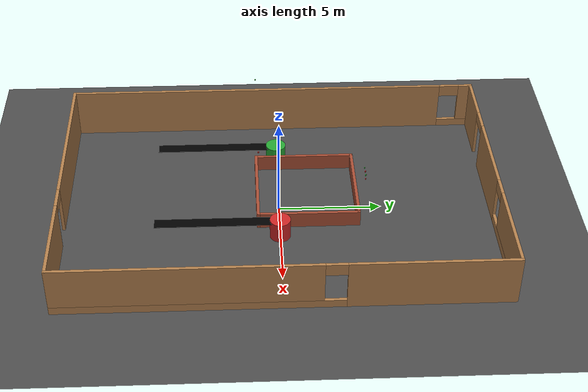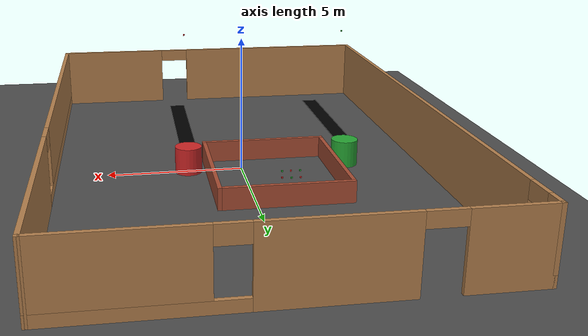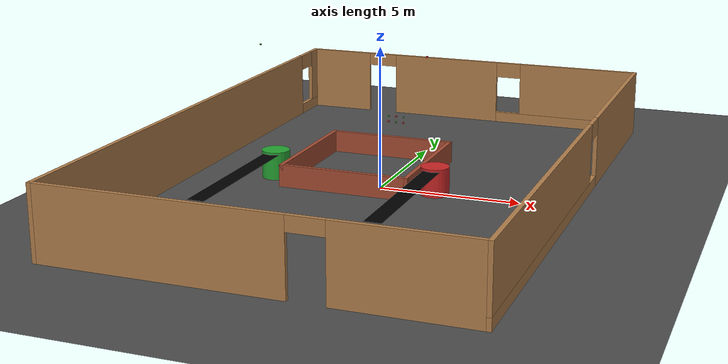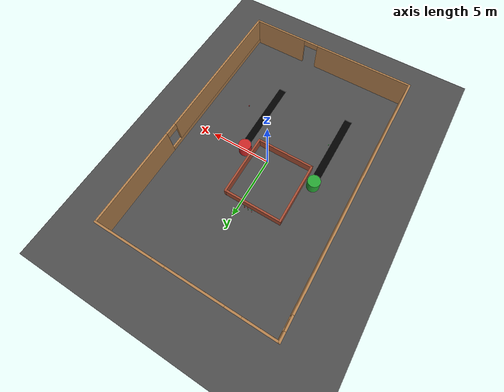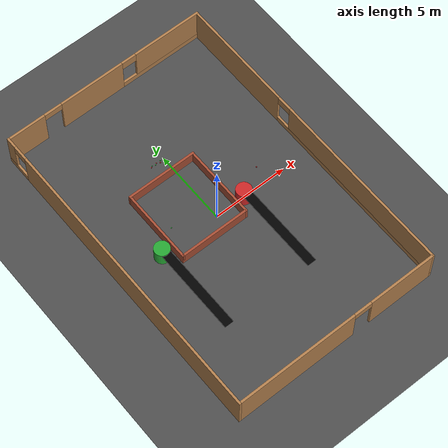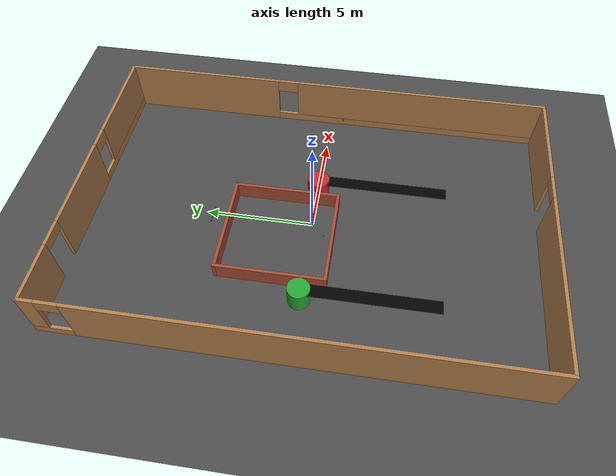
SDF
<sdf version="1.7">
 <world name="default">
  <light name="sun" type="directional">
   <pose>0 0 10 0 -0 0</pose>
   <diffuse>0.8 0.8 0.8 1</diffuse>
   <specular>0.2 0.2 0.2 1</specular>
   <attenuation>
    <range>1000</range>
    <constant>0.9</constant>
    <linear>0.01</linear>
    <quadratic>0.001</quadratic>
   </attenuation>
   <direction>-0.5 0.1 -0.9</direction>
   <spot><inner_angle>0</inner_angle><outer_angle>0</outer_angle><falloff>0</falloff></spot>
  </light>
  <gravity>0 0 -9.8</gravity>
  <magnetic_field>6e-06 2.3e-05 -4.2e-05</magnetic_field>
  <atmosphere type="adiabatic"/>
  <physics type="ode">
   <max_step_size>0.001</max_step_size>
   <real_time_factor>1</real_time_factor>
   <real_time_update_rate>1000</real_time_update_rate>
  </physics>
  <scene><ambient>0.4 0.4 0.4 1</ambient><background>0.7 0.7 0.7 1</background><shadows>1</shadows></scene>
  <spherical_coordinates>
   <surface_model>EARTH_WGS84</surface_model>
   <latitude_deg>0</latitude_deg>
   <longitude_deg>0</longitude_deg>
   <elevation>0</elevation>
   <heading_deg>0</heading_deg>
  </spherical_coordinates>
  <model name="Vichesta_Building">
   <link name="Wall_4">
    <pose>-6.92524 -0.000222 0 0 -0 1.5708</pose>
    <visual name="Wall_4_Visual_0">
     <pose>-0.860708 0 1.25 0 -0 0</pose>
     <geometry><box><size>19.2786 0.15 2.5</size></box></geometry>
     <material>
      <script><uri>file://media/materials/scripts/gazebo.material</uri><name>Gazebo/Wood</name></script>
      <ambient>1 1 1 1</ambient>
     </material>
     <meta><layer>0</layer></meta>
    </visual>
    <collision name="Wall_4_Collision_0">
     <geometry><box><size>19.2786 0.15 2.5</size></box></geometry>
     <pose>-0.860708 0 1.25 0 -0 0</pose>
    </collision>
    <visual name="Wall_4_Visual_1">
     <pose>9.63929 0 0.2 0 -0 0</pose>
     <geometry><box><size>1.72142 0.15 0.4</size></box></geometry>
     <material>
      <script><uri>file://media/materials/scripts/gazebo.material</uri><name>Gazebo/Wood</name></script>
      <ambient>1 1 1 1</ambient>
     </material>
     <meta><layer>0</layer></meta>
    </visual>
    <collision name="Wall_4_Collision_1">
     <geometry><box><size>1.72142 0.15 0.4</size></box></geometry>
     <pose>9.63929 0 0.2 0 -0 0</pose>
    </collision>
    <visual name="Wall_4_Visual_2">
     <pose>10.1393 0 1.45 0 -0 0</pose>
     <geometry><box><size>0.721417 0.15 2.1</size></box></geometry>
     <material>
      <script><uri>file://media/materials/scripts/gazebo.material</uri><name>Gazebo/Wood</name></script>
      <ambient>1 1 1 1</ambient>
     </material>
     <meta><layer>0</layer></meta>
    </visual>
    <collision name="Wall_4_Collision_2">
     <geometry><box><size>0.721417 0.15 2.1</size></box></geometry>
     <pose>10.1393 0 1.45 0 -0 0</pose>
    </collision>
    <visual name="Wall_4_Visual_3">
     <pose>9.27858 0 2.2 0 -0 0</pose>
     <geometry><box><size>1 0.15 0.6</size></box></geometry>
     <material>
      <script><uri>file://media/materials/scripts/gazebo.material</uri><name>Gazebo/Wood</name></script>
      <ambient>1 1 1 1</ambient>
     </material>
     <meta><layer>0</layer></meta>
    </visual>
    <collision name="Wall_4_Collision_3">
     <geometry><box><size>1 0.15 0.6</size></box></geometry>
     <pose>9.27858 0 2.2 0 -0 0</pose>
    </collision>
   </link>
   <link name="Wall_5">
    <pose>-0 10.425 0 0 -0 3.2e-05</pose>
    <visual name="Wall_5_Visual_0">
     <pose>-5.68626 0 1.25 0 -0 0</pose>
     <geometry><box><size>2.62749 0.15 2.5</size></box></geometry>
     <material>
      <script><uri>file://media/materials/scripts/gazebo.material</uri><name>Gazebo/Wood</name></script>
      <ambient>1 1 1 1</ambient>
     </material>
     <meta><layer>0</layer></meta>
    </visual>
    <collision name="Wall_5_Collision_0">
     <geometry><box><size>2.62749 0.15 2.5</size></box></geometry>
     <pose>-5.68626 0 1.25 0 -0 0</pose>
    </collision>
    <visual name="Wall_5_Visual_1">
     <pose>-0.953751 0 1.25 0 -0 0</pose>
     <geometry><box><size>4.43752 0.15 2.5</size></box></geometry>
     <material>
      <script><uri>file://media/materials/scripts/gazebo.material</uri><name>Gazebo/Wood</name></script>
      <ambient>1 1 1 1</ambient>
     </material>
     <meta><layer>0</layer></meta>
    </visual>
    <collision name="Wall_5_Collision_1">
     <geometry><box><size>4.43752 0.15 2.5</size></box></geometry>
     <pose>-0.953751 0 1.25 0 -0 0</pose>
    </collision>
    <visual name="Wall_5_Visual_2">
     <pose>4.13251 0 0.2 0 -0 0</pose>
     <geometry><box><size>5.73499 0.15 0.4</size></box></geometry>
     <material>
      <script><uri>file://media/materials/scripts/gazebo.material</uri><name>Gazebo/Wood</name></script>
      <ambient>1 1 1 1</ambient>
     </material>
     <meta><layer>0</layer></meta>
    </visual>
    <collision name="Wall_5_Collision_2">
     <geometry><box><size>5.73499 0.15 0.4</size></box></geometry>
     <pose>4.13251 0 0.2 0 -0 0</pose>
    </collision>
    <visual name="Wall_5_Visual_3">
     <pose>4.63251 0 1.45 0 -0 0</pose>
     <geometry><box><size>4.73499 0.15 2.1</size></box></geometry>
     <material>
      <script><uri>file://media/materials/scripts/gazebo.material</uri><name>Gazebo/Wood</name></script>
      <ambient>1 1 1 1</ambient>
     </material>
     <meta><layer>0</layer></meta>
    </visual>
    <collision name="Wall_5_Collision_3">
     <geometry><box><size>4.73499 0.15 2.1</size></box></geometry>
     <pose>4.63251 0 1.45 0 -0 0</pose>
    </collision>
    <visual name="Wall_5_Visual_4">
     <pose>1.76501 0 2.2 0 -0 0</pose>
     <geometry><box><size>1 0.15 0.6</size></box></geometry>
     <material>
      <script><uri>file://media/materials/scripts/gazebo.material</uri><name>Gazebo/Wood</name></script>
      <ambient>1 1 1 1</ambient>
     </material>
     <meta><layer>0</layer></meta>
    </visual>
    <collision name="Wall_5_Collision_4">
     <geometry><box><size>1 0.15 0.6</size></box></geometry>
     <pose>1.76501 0 2.2 0 -0 0</pose>
    </collision>
    <visual name="Wall_5_Visual_5">
     <pose>-3.77251 0 2.25 0 -0 0</pose>
     <geometry><box><size>1.2 0.15 0.5</size></box></geometry>
     <material>
      <script><uri>file://media/materials/scripts/gazebo.material</uri><name>Gazebo/Wood</name></script>
      <ambient>1 1 1 1</ambient>
     </material>
     <meta><layer>0</layer></meta>
    </visual>
    <collision name="Wall_5_Collision_5">
     <geometry><box><size>1.2 0.15 0.5</size></box></geometry>
     <pose>-3.77251 0 2.25 0 -0 0</pose>
    </collision>
   </link>
   <link name="Wall_6">
    <pose>6.92524 0.000222 0 0 -0 -1.5708</pose>
    <visual name="Wall_6_Visual_0">
     <pose>-6.64128 0 1.25 0 -0 0</pose>
     <geometry><box><size>7.71744 0.15 2.5</size></box></geometry>
     <material>
      <script><uri>file://media/materials/scripts/gazebo.material</uri><name>Gazebo/Wood</name></script>
      <ambient>1 1 1 1</ambient>
     </material>
     <meta><layer>0</layer></meta>
    </visual>
    <collision name="Wall_6_Collision_0">
     <geometry><box><size>7.71744 0.15 2.5</size></box></geometry>
     <pose>-6.64128 0 1.25 0 -0 0</pose>
    </collision>
    <visual name="Wall_6_Visual_1">
     <pose>3.85872 0 0.2 0 -0 0</pose>
     <geometry><box><size>13.2826 0.15 0.4</size></box></geometry>
     <material>
      <script><uri>file://media/materials/scripts/gazebo.material</uri><name>Gazebo/Wood</name></script>
      <ambient>1 1 1 1</ambient>
     </material>
     <meta><layer>0</layer></meta>
    </visual>
    <collision name="Wall_6_Collision_1">
     <geometry><box><size>13.2826 0.15 0.4</size></box></geometry>
     <pose>3.85872 0 0.2 0 -0 0</pose>
    </collision>
    <visual name="Wall_6_Visual_2">
     <pose>4.35872 0 1.45 0 -0 0</pose>
     <geometry><box><size>12.2826 0.15 2.1</size></box></geometry>
     <material>
      <script><uri>file://media/materials/scripts/gazebo.material</uri><name>Gazebo/Wood</name></script>
      <ambient>1 1 1 1</ambient>
     </material>
     <meta><layer>0</layer></meta>
    </visual>
    <collision name="Wall_6_Collision_2">
     <geometry><box><size>12.2826 0.15 2.1</size></box></geometry>
     <pose>4.35872 0 1.45 0 -0 0</pose>
    </collision>
    <visual name="Wall_6_Visual_3">
     <pose>-2.28256 0 2.2 0 -0 0</pose>
     <geometry><box><size>1 0.15 0.6</size></box></geometry>
     <material>
      <script><uri>file://media/materials/scripts/gazebo.material</uri><name>Gazebo/Wood</name></script>
      <ambient>1 1 1 1</ambient>
     </material>
     <meta><layer>0</layer></meta>
    </visual>
    <collision name="Wall_6_Collision_3">
     <geometry><box><size>1 0.15 0.6</size></box></geometry>
     <pose>-2.28256 0 2.2 0 -0 0</pose>
    </collision>
   </link>
   <link name="Wall_8">
    <pose>-0 -10.425 0 0 -0 3.2e-05</pose>
    <visual name="Wall_8_Visual_0">
     <pose>-2.90462 0 1.25 0 -0 0</pose>
     <geometry><box><size>8.19076 0.15 2.5</size></box></geometry>
     <material>
      <script><uri>file://media/materials/scripts/gazebo.material</uri><name>Gazebo/Wood</name></script>
      <ambient>1 1 1 1</ambient>
     </material>
     <meta><layer>0</layer></meta>
    </visual>
    <collision name="Wall_8_Collision_0">
     <geometry><box><size>8.19076 0.15 2.5</size></box></geometry>
     <pose>-2.90462 0 1.25 0 -0 0</pose>
    </collision>
    <visual name="Wall_8_Visual_1">
     <pose>4.69538 0 1.25 0 -0 0</pose>
     <geometry><box><size>4.60924 0.15 2.5</size></box></geometry>
     <material>
      <script><uri>file://media/materials/scripts/gazebo.material</uri><name>Gazebo/Wood</name></script>
      <ambient>1 1 1 1</ambient>
     </material>
     <meta><layer>0</layer></meta>
    </visual>
    <collision name="Wall_8_Collision_1">
     <geometry><box><size>4.60924 0.15 2.5</size></box></geometry>
     <pose>4.69538 0 1.25 0 -0 0</pose>
    </collision>
    <visual name="Wall_8_Visual_2">
     <pose>1.79076 0 2.25 0 -0 0</pose>
     <geometry><box><size>1.2 0.15 0.5</size></box></geometry>
     <material>
      <script><uri>file://media/materials/scripts/gazebo.material</uri><name>Gazebo/Wood</name></script>
      <ambient>1 1 1 1</ambient>
     </material>
     <meta><layer>0</layer></meta>
    </visual>
    <collision name="Wall_8_Collision_2">
     <geometry><box><size>1.2 0.15 0.5</size></box></geometry>
     <pose>1.79076 0 2.25 0 -0 0</pose>
    </collision>
   </link>
   <static>1</static>
  </model>
  <model name="ground_plane">
   <static>1</static>
   <link name="link">
    <collision name="collision">
     <geometry><plane><normal>0 0 1</normal><size>100 100</size></plane></geometry>
     <surface>
      <contact><collide_bitmask>65535</collide_bitmask></contact>
      <friction><ode><mu>100</mu><mu2>50</mu2></ode></friction>
     </surface>
    </collision>
    <visual name="visual">
     <cast_shadows>0</cast_shadows>
     <geometry><plane><normal>0 0 1</normal><size>100 100</size></plane></geometry>
     <material>
      <script><uri>file://media/materials/scripts/gazebo.material</uri><name>Gazebo/DarkGrey</name></script>
     </material>
    </visual>
   </link>
   <pose>-8.17844 11.8001 0 0 -0 0</pose>
  </model>
  <model name="green_box">
   <link name="link_0">
    <inertial>
     <mass>0.1</mass>
     <inertia>
      <ixx>3.5295e-06</ixx>
      <ixy>0</ixy>
      <ixz>0</ixz>
      <iyy>3.47859e-06</iyy>
      <iyz>0</iyz>
      <izz>4.27589e-06</izz>
     </inertia>
    </inertial>
    <pose>-0 2e-06 0 0 -0 0</pose>
    <visual name="visual">
     <geometry><box><size>0.05 0.05 0.05</size></box></geometry>
     <material>
      <lighting>1</lighting>
      <script><uri>file://media/materials/scripts/gazebo.material</uri><name>Gazebo/Green</name></script>
      <shader type="pixel"/>
     </material>
    </visual>
    <collision name="collision">
     <geometry><box><size>0.05 0.05 0.05</size></box></geometry>
     <surface>
      <friction>
       <ode><mu>1</mu><mu2>1</mu2><fdir1>0 0 0</fdir1><slip1>0</slip1><slip2>0</slip2></ode>
       <torsional>
        <coefficient>1</coefficient>
        <patch_radius>0</patch_radius>
        <surface_radius>0</surface_radius>
        <use_patch_radius>1</use_patch_radius>
        <ode><slip>0</slip></ode>
       </torsional>
      </friction>
      <bounce><restitution_coefficient>0</restitution_coefficient><threshold>1e+06</threshold></bounce>
      <contact>
       <collide_without_contact>0</collide_without_contact>
       <collide_without_contact_bitmask>1</collide_without_contact_bitmask>
       <collide_bitmask>1</collide_bitmask>
       <ode>
        <soft_cfm>0</soft_cfm>
        <soft_erp>0.2</soft_erp>
        <kp>1e+13</kp>
        <kd>1</kd>
        <max_vel>0.01</max_vel>
        <min_depth>0</min_depth>
       </ode>
       <bullet>
        <split_impulse>1</split_impulse>
        <split_impulse_penetration_threshold>-0.01</split_impulse_penetration_threshold>
        <soft_cfm>0</soft_cfm>
        <soft_erp>0.2</soft_erp>
        <kp>1e+13</kp>
        <kd>1</kd>
       </bullet>
      </contact>
     </surface>
    </collision>
   </link>
   <static>0</static>
   <pose>-1.00791 4.3655 1.21604 -2.4e-05 -0 -0.05523</pose>
  </model>
  <model name="red_box">
   <link name="link_0">
    <inertial>
     <mass>0.1</mass>
     <inertia>
      <ixx>3.5295e-06</ixx>
      <ixy>0</ixy>
      <ixz>0</ixz>
      <iyy>3.47859e-06</iyy>
      <iyz>0</iyz>
      <izz>4.27589e-06</izz>
     </inertia>
    </inertial>
    <pose>-0 2e-06 0 0 -0 0</pose>
    <visual name="visual">
     <geometry><box><size>0.05 0.05 0.05</size></box></geometry>
     <material>
      <lighting>1</lighting>
      <script><uri>file://media/materials/scripts/gazebo.material</uri><name>Gazebo/Red</name></script>
      <shader type="pixel"/>
     </material>
    </visual>
    <collision name="collision">
     <geometry><box><size>0.05 0.05 0.05</size></box></geometry>
     <surface>
      <friction>
       <ode><mu>1</mu><mu2>1</mu2><fdir1>0 0 0</fdir1><slip1>0</slip1><slip2>0</slip2></ode>
       <torsional>
        <coefficient>1</coefficient>
        <patch_radius>0</patch_radius>
        <surface_radius>0</surface_radius>
        <use_patch_radius>1</use_patch_radius>
        <ode><slip>0</slip></ode>
       </torsional>
      </friction>
      <bounce><restitution_coefficient>0</restitution_coefficient><threshold>1e+06</threshold></bounce>
      <contact>
       <collide_without_contact>0</collide_without_contact>
       <collide_without_contact_bitmask>1</collide_without_contact_bitmask>
       <collide_bitmask>1</collide_bitmask>
       <ode>
        <soft_cfm>0</soft_cfm>
        <soft_erp>0.2</soft_erp>
        <kp>1e+13</kp>
        <kd>1</kd>
        <max_vel>0.01</max_vel>
        <min_depth>0</min_depth>
       </ode>
       <bullet>
        <split_impulse>1</split_impulse>
        <split_impulse_penetration_threshold>-0.01</split_impulse_penetration_threshold>
        <soft_cfm>0</soft_cfm>
        <soft_erp>0.2</soft_erp>
        <kp>1e+13</kp>
        <kd>1</kd>
       </bullet>
      </contact>
     </surface>
    </collision>
   </link>
   <static>0</static>
   <pose>-1.30915 4.37173 1.21605 -2.9e-05 1.5e-05 -0.024752</pose>
  </model>
  <model name="green_box_0">
   <link name="link_0">
    <inertial>
     <mass>0.1</mass>
     <inertia>
      <ixx>3.5295e-06</ixx>
      <ixy>0</ixy>
      <ixz>0</ixz>
      <iyy>3.47859e-06</iyy>
      <iyz>0</iyz>
      <izz>4.27589e-06</izz>
     </inertia>
    </inertial>
    <pose>-0 2e-06 0 0 -0 0</pose>
    <visual name="visual">
     <geometry><box><size>0.05 0.05 0.05</size></box></geometry>
     <material>
      <lighting>1</lighting>
      <script><uri>file://media/materials/scripts/gazebo.material</uri><name>Gazebo/Green</name></script>
      <shader type="pixel"/>
     </material>
    </visual>
    <collision name="collision">
     <geometry><box><size>0.05 0.05 0.05</size></box></geometry>
     <surface>
      <friction>
       <ode><mu>1</mu><mu2>1</mu2><fdir1>0 0 0</fdir1><slip1>0</slip1><slip2>0</slip2></ode>
       <torsional>
        <coefficient>1</coefficient>
        <patch_radius>0</patch_radius>
        <surface_radius>0</surface_radius>
        <use_patch_radius>1</use_patch_radius>
        <ode><slip>0</slip></ode>
       </torsional>
      </friction>
      <bounce><restitution_coefficient>0</restitution_coefficient><threshold>1e+06</threshold></bounce>
      <contact>
       <collide_without_contact>0</collide_without_contact>
       <collide_without_contact_bitmask>1</collide_without_contact_bitmask>
       <collide_bitmask>1</collide_bitmask>
       <ode>
        <soft_cfm>0</soft_cfm>
        <soft_erp>0.2</soft_erp>
        <kp>1e+13</kp>
        <kd>1</kd>
        <max_vel>0.01</max_vel>
        <min_depth>0</min_depth>
       </ode>
       <bullet>
        <split_impulse>1</split_impulse>
        <split_impulse_penetration_threshold>-0.01</split_impulse_penetration_threshold>
        <soft_cfm>0</soft_cfm>
        <soft_erp>0.2</soft_erp>
        <kp>1e+13</kp>
        <kd>1</kd>
       </bullet>
      </contact>
     </surface>
    </collision>
   </link>
   <static>0</static>
   <pose>-0.698789 4.31712 1.44464 6e-06 3e-06 -0.000855</pose>
  </model>
  <model name="red_box_0">
   <link name="link_0">
    <inertial>
     <mass>0.1</mass>
     <inertia>
      <ixx>3.5295e-06</ixx>
      <ixy>0</ixy>
      <ixz>0</ixz>
      <iyy>3.47859e-06</iyy>
      <iyz>0</iyz>
      <izz>4.27589e-06</izz>
     </inertia>
    </inertial>
    <pose>-0 2e-06 0 0 -0 0</pose>
    <visual name="visual">
     <geometry><box><size>0.05 0.05 0.05</size></box></geometry>
     <material>
      <lighting>1</lighting>
      <script><uri>file://media/materials/scripts/gazebo.material</uri><name>Gazebo/Red</name></script>
      <shader type="pixel"/>
     </material>
    </visual>
    <collision name="collision">
     <geometry><box><size>0.05 0.05 0.05</size></box></geometry>
     <surface>
      <friction>
       <ode><mu>1</mu><mu2>1</mu2><fdir1>0 0 0</fdir1><slip1>0</slip1><slip2>0</slip2></ode>
       <torsional>
        <coefficient>1</coefficient>
        <patch_radius>0</patch_radius>
        <surface_radius>0</surface_radius>
        <use_patch_radius>1</use_patch_radius>
        <ode><slip>0</slip></ode>
       </torsional>
      </friction>
      <bounce><restitution_coefficient>0</restitution_coefficient><threshold>1e+06</threshold></bounce>
      <contact>
       <collide_without_contact>0</collide_without_contact>
       <collide_without_contact_bitmask>1</collide_without_contact_bitmask>
       <collide_bitmask>1</collide_bitmask>
       <ode>
        <soft_cfm>0</soft_cfm>
        <soft_erp>0.2</soft_erp>
        <kp>1e+13</kp>
        <kd>1</kd>
        <max_vel>0.01</max_vel>
        <min_depth>0</min_depth>
       </ode>
       <bullet>
        <split_impulse>1</split_impulse>
        <split_impulse_penetration_threshold>-0.01</split_impulse_penetration_threshold>
        <soft_cfm>0</soft_cfm>
        <soft_erp>0.2</soft_erp>
        <kp>1e+13</kp>
        <kd>1</kd>
       </bullet>
      </contact>
     </surface>
    </collision>
   </link>
   <static>0</static>
   <pose>-0.981609 4.3238 1.44464 1e-06 -4e-06 -0.310746</pose>
  </model>
  <model name="red_box_1">
   <link name="link_0">
    <inertial>
     <mass>0.1</mass>
     <inertia>
      <ixx>3.5295e-06</ixx>
      <ixy>0</ixy>
      <ixz>0</ixz>
      <iyy>3.47859e-06</iyy>
      <iyz>0</iyz>
      <izz>4.27589e-06</izz>
     </inertia>
    </inertial>
    <pose>-0 2e-06 0 0 -0 0</pose>
    <visual name="visual">
     <geometry><box><size>0.05 0.05 0.05</size></box></geometry>
     <material>
      <lighting>1</lighting>
      <script><uri>file://media/materials/scripts/gazebo.material</uri><name>Gazebo/Red</name></script>
      <shader type="pixel"/>
     </material>
    </visual>
    <collision name="collision">
     <geometry><box><size>0.05 0.05 0.05</size></box></geometry>
     <surface>
      <friction>
       <ode><mu>1</mu><mu2>1</mu2><fdir1>0 0 0</fdir1><slip1>0</slip1><slip2>0</slip2></ode>
       <torsional>
        <coefficient>1</coefficient>
        <patch_radius>0</patch_radius>
        <surface_radius>0</surface_radius>
        <use_patch_radius>1</use_patch_radius>
        <ode><slip>0</slip></ode>
       </torsional>
      </friction>
      <bounce><restitution_coefficient>0</restitution_coefficient><threshold>1e+06</threshold></bounce>
      <contact>
       <collide_without_contact>0</collide_without_contact>
       <collide_without_contact_bitmask>1</collide_without_contact_bitmask>
       <collide_bitmask>1</collide_bitmask>
       <ode>
        <soft_cfm>0</soft_cfm>
        <soft_erp>0.2</soft_erp>
        <kp>1e+13</kp>
        <kd>1</kd>
        <max_vel>0.01</max_vel>
        <min_depth>0</min_depth>
       </ode>
       <bullet>
        <split_impulse>1</split_impulse>
        <split_impulse_penetration_threshold>-0.01</split_impulse_penetration_threshold>
        <soft_cfm>0</soft_cfm>
        <soft_erp>0.2</soft_erp>
        <kp>1e+13</kp>
        <kd>1</kd>
       </bullet>
      </contact>
     </surface>
    </collision>
   </link>
   <static>0</static>
   <pose>-0.704834 4.31956 1.21603 -2.6e-05 1e-06 0.093318</pose>
  </model>
  <model name="green_box_1">
   <link name="link_0">
    <inertial>
     <mass>0.1</mass>
     <inertia>
      <ixx>3.5295e-06</ixx>
      <ixy>0</ixy>
      <ixz>0</ixz>
      <iyy>3.47859e-06</iyy>
      <iyz>0</iyz>
      <izz>4.27589e-06</izz>
     </inertia>
    </inertial>
    <pose>-0 2e-06 0 0 -0 0</pose>
    <visual name="visual">
     <geometry><box><size>0.05 0.05 0.05</size></box></geometry>
     <material>
      <lighting>1</lighting>
      <script><uri>file://media/materials/scripts/gazebo.material</uri><name>Gazebo/Green</name></script>
      <shader type="pixel"/>
     </material>
    </visual>
    <collision name="collision">
     <geometry><box><size>0.05 0.05 0.05</size></box></geometry>
     <surface>
      <friction>
       <ode><mu>1</mu><mu2>1</mu2><fdir1>0 0 0</fdir1><slip1>0</slip1><slip2>0</slip2></ode>
       <torsional>
        <coefficient>1</coefficient>
        <patch_radius>0</patch_radius>
        <surface_radius>0</surface_radius>
        <use_patch_radius>1</use_patch_radius>
        <ode><slip>0</slip></ode>
       </torsional>
      </friction>
      <bounce><restitution_coefficient>0</restitution_coefficient><threshold>1e+06</threshold></bounce>
      <contact>
       <collide_without_contact>0</collide_without_contact>
       <collide_without_contact_bitmask>1</collide_without_contact_bitmask>
       <collide_bitmask>1</collide_bitmask>
       <ode>
        <soft_cfm>0</soft_cfm>
        <soft_erp>0.2</soft_erp>
        <kp>1e+13</kp>
        <kd>1</kd>
        <max_vel>0.01</max_vel>
        <min_depth>0</min_depth>
       </ode>
       <bullet>
        <split_impulse>1</split_impulse>
        <split_impulse_penetration_threshold>-0.01</split_impulse_penetration_threshold>
        <soft_cfm>0</soft_cfm>
        <soft_erp>0.2</soft_erp>
        <kp>1e+13</kp>
        <kd>1</kd>
       </bullet>
      </contact>
     </surface>
    </collision>
   </link>
   <static>0</static>
   <pose>-1.29234 4.31765 1.44464 -8e-06 8e-06 -0.000662</pose>
  </model>
  <include><uri>model://red_conveyor</uri><pose>2 2 0 0 0 -1.571</pose></include>
  <include>
   <uri>model://red_conveyor_end_cylinder</uri>
   <pose>2 0 0.5 0 0 -1.571</pose>
   <static>true</static>
  </include>
  <include><uri>model://green_conveyor</uri><pose>-4 2 0 0 0 -1.571</pose></include>
  <include>
   <uri>model://green_conveyor_end_cylinder</uri>
   <pose>-4 0 0.5 0 0 -1.571</pose>
   <static>true</static>
  </include>
  <include><name>test_red_box</name><uri>model://red_box</uri><pose>2 -1 5 0 0 0</pose></include>
  <include><name>test_green_box</name><uri>model://green_box</uri><pose>-4 -1 5 0 0 0</pose></include>
  <include><uri>model://SafeAreaWall</uri><pose>-1 1.4 0 0 0 0</pose></include>
 </world>
</sdf>

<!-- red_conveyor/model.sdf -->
<sdf version="1.6">
  <model name="red_conveyor_belt">

    <model name="red_conveyor_belt_fixed">
      <static>true</static>
      <pose>0 0 0 0 0 0</pose>
      <link name="link">
        <pose>0 0 0 0 0 0</pose>
      </link>
    </model>

    <model name="red_conveyor_belt_moving">
      <static>false</static>
      <pose>0 0 0.92 0 0 0</pose>
      <link name="belt">
        <pose>5 0 -0.003 0 0 0</pose>

        <inertial>
          <inertia>
            <ixx>3.8185</ixx>
            <ixy>0</ixy>
            <ixz>0</ixz>
            <iyy>1781.5</iyy>
            <iyz>0</iyz>
            <izz>1784.72</izz>
          </inertia>
          <mass>100</mass>
        </inertial>

        <collision name="belt_collision">
          <geometry>
            <box>
              <size>6 0.6 0.006</size>
            </box>
          </geometry>

          <surface>
            <friction>
              <ode>
                <mu>1.0</mu>
                <mu2>1.0</mu2>
              </ode>
              <torsional>
                <coefficient>1000.0</coefficient>
                <patch_radius>0.1</patch_radius>
              </torsional>
            </friction>
          </surface>

        </collision>

        <visual name="visual">
        <geometry>
          <box>
            <size>6 0.6 0.006</size>
          </box>
        </geometry>
        <material>
          <ambient>0 0 0 1</ambient>
          <diffuse>0 0 0 1</diffuse>
          <specular>0.1 0.1 0.1 1</specular>
          <emissive>0 0 0 0</emissive>
        </material>
      </visual>

      </link>
    </model>

    <joint name="belt_joint" type="prismatic">
      <parent>red_conveyor_belt_fixed::link</parent>
      <child>red_conveyor_belt_moving::belt</child>
      <axis>
        <xyz>1 0 0</xyz>
        <limit>
          <lower>0</lower>
          <upper>1.0</upper>
        </limit>
      </axis>
    </joint>

    <plugin name="conveyor_belt_plugin" filename="libROSConveyorBeltPlugin.so">
      <robot_namespace>/red_conveyor</robot_namespace>
      <population_rate_modifier_topic>/gazebo_sim/population/rate_modifier</population_rate_modifier_topic>
      <link>red_conveyor_belt::red_conveyor_belt_moving::belt</link>
      <power>0</power>
      <min_velocity>0.0</min_velocity>
      <max_velocity>1.0</max_velocity>
    </plugin>

  </model>
</sdf>

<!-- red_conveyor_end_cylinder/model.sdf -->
<sdf version='1.6'>
  <model name='red_conveyor_end_cylinder'>
    <link name='link'>
      <inertial>
        <mass>1</mass>
        <inertia>
          <ixx>0.145833</ixx>
          <ixy>0</ixy>
          <ixz>0</ixz>
          <iyy>0.145833</iyy>
          <iyz>0</iyz>
          <izz>0.125</izz>
        </inertia>
        <pose frame=''>0 0 0 0 -0 0</pose>
      </inertial>
      <self_collide>0</self_collide>
      <enable_wind>0</enable_wind>
      <kinematic>0</kinematic>
      <pose frame=''>0 0 0 0 -0 0</pose>
      <visual name='visual'>
        <geometry>
          <cylinder>
            <radius>0.5</radius>
            <length>1</length>
          </cylinder>
        </geometry>
        <material>
          <script>
            <name>Gazebo/Red</name>
            <uri>file://media/materials/scripts/gazebo.material</uri>
          </script>
          <shader type='pixel'/>
        </material>
        <pose frame=''>0 0 0 0 -0 0</pose>
        <transparency>0</transparency>
        <cast_shadows>1</cast_shadows>
      </visual>
    </link>
    <static>0</static>
    <allow_auto_disable>1</allow_auto_disable>
  </model>
</sdf>

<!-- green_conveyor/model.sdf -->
<sdf version="1.6">
  <model name="green_conveyor_belt">

    <model name="green_conveyor_belt_fixed">
      <static>true</static>
      <pose>0 0 0 0 0 0</pose>
      <link name="link">
        <pose>0 0 0 0 0 0</pose>
      </link>
    </model>

    <model name="green_conveyor_belt_moving">
      <static>false</static>
      <pose>0 0 0.92 0 0 0</pose>
      <link name="belt">
        <pose>5 0 -0.003 0 0 0</pose>

        <inertial>
          <inertia>
            <ixx>3.8185</ixx>
            <ixy>0</ixy>
            <ixz>0</ixz>
            <iyy>1781.5</iyy>
            <iyz>0</iyz>
            <izz>1784.72</izz>
          </inertia>
          <mass>100</mass>
        </inertial>

        <collision name="belt_collision">
          <geometry>
            <box>
              <size>6 0.6 0.006</size>
            </box>
          </geometry>

          <surface>
            <friction>
              <ode>
                <mu>1.0</mu>
                <mu2>1.0</mu2>
              </ode>
              <torsional>
                <coefficient>1000.0</coefficient>
                <patch_radius>0.1</patch_radius>
              </torsional>
            </friction>
          </surface>

        </collision>

        <visual name="visual">
        <geometry>
          <box>
            <size>6 0.6 0.006</size>
          </box>
        </geometry>
        <material>
          <ambient>0 0 0 1</ambient>
          <diffuse>0 0 0 1</diffuse>
          <specular>0.1 0.1 0.1 1</specular>
          <emissive>0 0 0 0</emissive>
        </material>
      </visual>

      </link>
    </model>

    <joint name="belt_joint" type="prismatic">
      <parent>green_conveyor_belt_fixed::link</parent>
      <child>green_conveyor_belt_moving::belt</child>
      <axis>
        <xyz>1 0 0</xyz>
        <limit>
          <lower>0</lower>
          <upper>1.0</upper>
        </limit>
      </axis>
    </joint>

    <plugin name="conveyor_belt_plugin" filename="libROSConveyorBeltPlugin.so">
      <robot_namespace>/green_conveyor</robot_namespace>
      <population_rate_modifier_topic>/gazebo_sim/population/rate_modifier</population_rate_modifier_topic>
      <link>green_conveyor_belt::green_conveyor_belt_moving::belt</link>
      <power>0</power>
      <min_velocity>0.0</min_velocity>
      <max_velocity>1.0</max_velocity>
    </plugin>

  </model>
</sdf>

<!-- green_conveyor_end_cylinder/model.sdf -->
<sdf version='1.6'>
  <model name='green_conveyor_end_cylinder'>
    <link name='link'>
      <inertial>
        <mass>1</mass>
        <inertia>
          <ixx>0.145833</ixx>
          <ixy>0</ixy>
          <ixz>0</ixz>
          <iyy>0.145833</iyy>
          <iyz>0</iyz>
          <izz>0.125</izz>
        </inertia>
        <pose frame=''>0 0 0 0 -0 0</pose>
      </inertial>
      <self_collide>0</self_collide>
      <enable_wind>0</enable_wind>
      <kinematic>0</kinematic>
      <pose frame=''>0 0 0 0 -0 0</pose>
      <visual name='visual'>
        <geometry>
          <cylinder>
            <radius>0.5</radius>
            <length>1</length>
          </cylinder>
        </geometry>
        <material>
          <script>
            <name>Gazebo/Green</name>
            <uri>file://media/materials/scripts/gazebo.material</uri>
          </script>
          <shader type='pixel'/>
        </material>
        <pose frame=''>0 0 0 0 -0 0</pose>
        <transparency>0</transparency>
        <cast_shadows>1</cast_shadows>
      </visual>
    </link>
    <static>0</static>
    <allow_auto_disable>1</allow_auto_disable>
  </model>
</sdf>

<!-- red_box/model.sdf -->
<sdf version='1.7'>
  <model name='red_box'>
    <link name='link_0'>
      <inertial>
        <mass>0.1</mass>
        <inertia>
          <ixx>3.5295e-06</ixx>
          <ixy>0</ixy>
          <ixz>0</ixz>
          <iyy>3.47859e-06</iyy>
          <iyz>0</iyz>
          <izz>4.27589e-06</izz>
        </inertia>
        <pose>0 0 0 0 -0 0</pose>
      </inertial>
      <pose>-0 2e-06 0 0 -0 0</pose>
      <visual name='visual'>
        <pose>0 0 0 0 -0 0</pose>
        <geometry>
          <box>
            <size>0.05 0.05 0.05</size>
          </box>
        </geometry>
        <material>
          <lighting>1</lighting>
          <script>
            <uri>file://media/materials/scripts/gazebo.material</uri>
            <name>Gazebo/Red</name>
          </script>
          <shader type='pixel'/>
        </material>
        <transparency>0</transparency>
        <cast_shadows>1</cast_shadows>
      </visual>
      <collision name='collision'>
        <laser_retro>0</laser_retro>
        <max_contacts>10</max_contacts>
        <pose>0 0 0 0 -0 0</pose>
        <geometry>
          <box>
            <size>0.05 0.05 0.05</size>
          </box>
        </geometry>
        <surface>
          <friction>
            <ode>
              <mu>1</mu>
              <mu2>1</mu2>
              <fdir1>0 0 0</fdir1>
              <slip1>0</slip1>
              <slip2>0</slip2>
            </ode>
            <torsional>
              <coefficient>1</coefficient>
              <patch_radius>0</patch_radius>
              <surface_radius>0</surface_radius>
              <use_patch_radius>1</use_patch_radius>
              <ode>
                <slip>0</slip>
              </ode>
            </torsional>
          </friction>
          <bounce>
            <restitution_coefficient>0</restitution_coefficient>
            <threshold>1e+06</threshold>
          </bounce>
          <contact>
            <collide_without_contact>0</collide_without_contact>
            <collide_without_contact_bitmask>1</collide_without_contact_bitmask>
            <collide_bitmask>1</collide_bitmask>
            <ode>
              <soft_cfm>0</soft_cfm>
              <soft_erp>0.2</soft_erp>
              <kp>1e+13</kp>
              <kd>1</kd>
              <max_vel>0.01</max_vel>
              <min_depth>0</min_depth>
            </ode>
            <bullet>
              <split_impulse>1</split_impulse>
              <split_impulse_penetration_threshold>-0.01</split_impulse_penetration_threshold>
              <soft_cfm>0</soft_cfm>
              <soft_erp>0.2</soft_erp>
              <kp>1e+13</kp>
              <kd>1</kd>
            </bullet>
          </contact>
        </surface>
      </collision>
    </link>
    <static>0</static>
    <allow_auto_disable>1</allow_auto_disable>
  </model>
</sdf>

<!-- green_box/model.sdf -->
<sdf version='1.7'>
  <model name='green_box'>
    <link name='link_0'>
      <inertial>
        <mass>0.1</mass>
        <inertia>
          <ixx>3.5295e-06</ixx>
          <ixy>0</ixy>
          <ixz>0</ixz>
          <iyy>3.47859e-06</iyy>
          <iyz>0</iyz>
          <izz>4.27589e-06</izz>
        </inertia>
        <pose>0 0 0 0 -0 0</pose>
      </inertial>
      <pose>-0 2e-06 0 0 -0 0</pose>
      <visual name='visual'>
        <pose>0 0 0 0 -0 0</pose>
        <geometry>
          <box>
            <size>0.05 0.05 0.05</size>
          </box>
        </geometry>
        <material>
          <lighting>1</lighting>
          <script>
            <uri>file://media/materials/scripts/gazebo.material</uri>
            <name>Gazebo/Green</name>
          </script>
          <shader type='pixel'/>
        </material>
        <transparency>0</transparency>
        <cast_shadows>1</cast_shadows>
      </visual>
      <collision name='collision'>
        <laser_retro>0</laser_retro>
        <max_contacts>10</max_contacts>
        <pose>0 0 0 0 -0 0</pose>
        <geometry>
          <box>
            <size>0.05 0.05 0.05</size>
          </box>
        </geometry>
        <surface>
          <friction>
            <ode>
              <mu>1</mu>
              <mu2>1</mu2>
              <fdir1>0 0 0</fdir1>
              <slip1>0</slip1>
              <slip2>0</slip2>
            </ode>
            <torsional>
              <coefficient>1</coefficient>
              <patch_radius>0</patch_radius>
              <surface_radius>0</surface_radius>
              <use_patch_radius>1</use_patch_radius>
              <ode>
                <slip>0</slip>
              </ode>
            </torsional>
          </friction>
          <bounce>
            <restitution_coefficient>0</restitution_coefficient>
            <threshold>1e+06</threshold>
          </bounce>
          <contact>
            <collide_without_contact>0</collide_without_contact>
            <collide_without_contact_bitmask>1</collide_without_contact_bitmask>
            <collide_bitmask>1</collide_bitmask>
            <ode>
              <soft_cfm>0</soft_cfm>
              <soft_erp>0.2</soft_erp>
              <kp>1e+13</kp>
              <kd>1</kd>
              <max_vel>0.01</max_vel>
              <min_depth>0</min_depth>
            </ode>
            <bullet>
              <split_impulse>1</split_impulse>
              <split_impulse_penetration_threshold>-0.01</split_impulse_penetration_threshold>
              <soft_cfm>0</soft_cfm>
              <soft_erp>0.2</soft_erp>
              <kp>1e+13</kp>
              <kd>1</kd>
            </bullet>
          </contact>
        </surface>
      </collision>
    </link>
    <static>0</static>
    <allow_auto_disable>1</allow_auto_disable>
  </model>
</sdf>

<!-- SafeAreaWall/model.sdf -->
<sdf version='1.7'>
  <model name='SafeAreaWall'>
    <pose>-1 1.43 0 0 -0 0</pose>
    <link name='Wall_0'>
      <collision name='Wall_0_Collision'>
        <geometry>
          <box>
            <size>4.75 0.15 0.8</size>
          </box>
        </geometry>
        <pose>0 0 0.4 0 -0 0</pose>
      </collision>
      <visual name='Wall_0_Visual'>
        <pose>0 0 0.4 0 -0 0</pose>
        <geometry>
          <box>
            <size>4.75 0.15 0.8</size>
          </box>
        </geometry>
        <material>
          <script>
            <uri>file://media/materials/scripts/gazebo.material</uri>
            <name>Gazebo/Bricks</name>
          </script>
          <ambient>1 1 1 1</ambient>
        </material>
        <meta>
          <layer>0</layer>
        </meta>
      </visual>
      <pose>0 2.43 0 0 -0 3.14159</pose>
    </link>
    <link name='Wall_3'>
      <collision name='Wall_3_Collision'>
        <geometry>
          <box>
            <size>5.01 0.15 0.8</size>
          </box>
        </geometry>
        <pose>0 0 0.4 0 -0 0</pose>
      </collision>
      <visual name='Wall_3_Visual'>
        <pose>0 0 0.4 0 -0 0</pose>
        <geometry>
          <box>
            <size>5.01 0.15 0.8</size>
          </box>
        </geometry>
        <material>
          <script>
            <uri>file://media/materials/scripts/gazebo.material</uri>
            <name>Gazebo/Bricks</name>
          </script>
          <ambient>1 1 1 1</ambient>
        </material>
        <meta>
          <layer>0</layer>
        </meta>
      </visual>
      <pose>-2.3 -0 0 0 -0 -1.5708</pose>
    </link>
    <link name='Wall_4'>
      <collision name='Wall_4_Collision'>
        <geometry>
          <box>
            <size>4.75 0.15 0.8</size>
          </box>
        </geometry>
        <pose>0 0 0.4 0 -0 0</pose>
      </collision>
      <visual name='Wall_4_Visual'>
        <pose>0 0 0.4 0 -0 0</pose>
        <geometry>
          <box>
            <size>4.75 0.15 0.8</size>
          </box>
        </geometry>
        <material>
          <script>
            <uri>file://media/materials/scripts/gazebo.material</uri>
            <name>Gazebo/Bricks</name>
          </script>
          <ambient>1 1 1 1</ambient>
        </material>
        <meta>
          <layer>0</layer>
        </meta>
      </visual>
      <pose>0 -2.43 0 0 -0 0</pose>
    </link>
    <link name='Wall_6'>
      <collision name='Wall_6_Collision'>
        <geometry>
          <box>
            <size>5.01 0.15 0.8</size>
          </box>
        </geometry>
        <pose>0 0 0.4 0 -0 0</pose>
      </collision>
      <visual name='Wall_6_Visual'>
        <pose>0 0 0.4 0 -0 0</pose>
        <geometry>
          <box>
            <size>5.01 0.15 0.8</size>
          </box>
        </geometry>
        <material>
          <script>
            <uri>file://media/materials/scripts/gazebo.material</uri>
            <name>Gazebo/Bricks</name>
          </script>
          <ambient>1 1 1 1</ambient>
        </material>
        <meta>
          <layer>0</layer>
        </meta>
      </visual>
      <pose>2.3 -0 0 0 -0 -1.5708</pose>
    </link>
    <static>1</static>
  </model>
</sdf>
